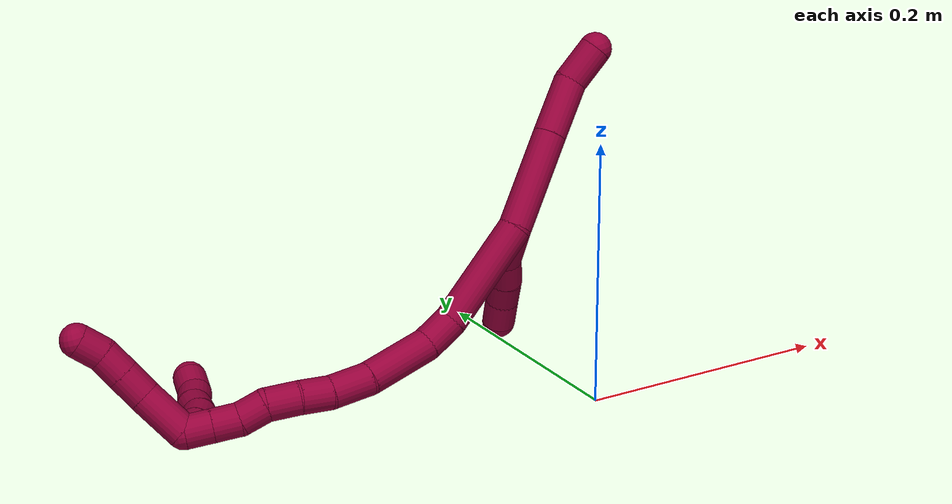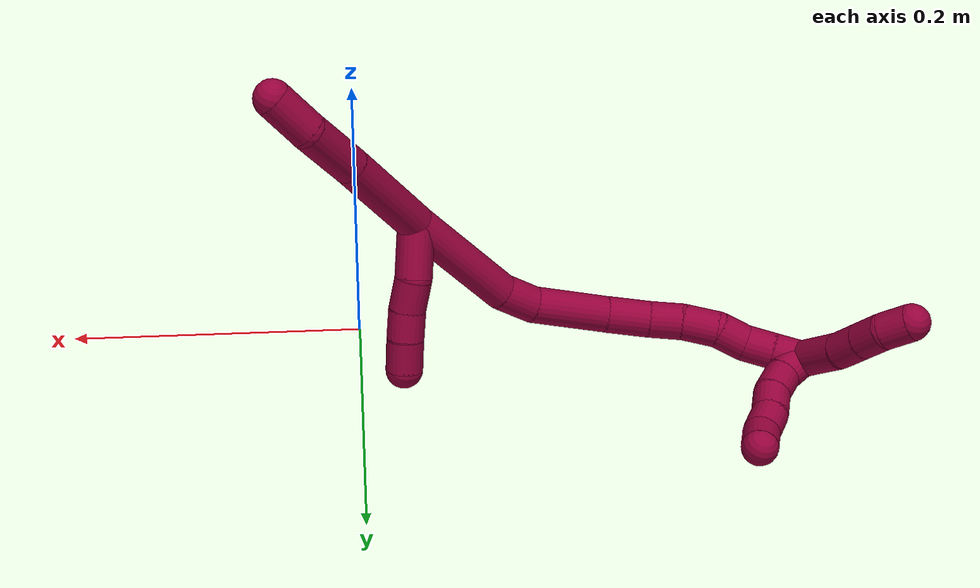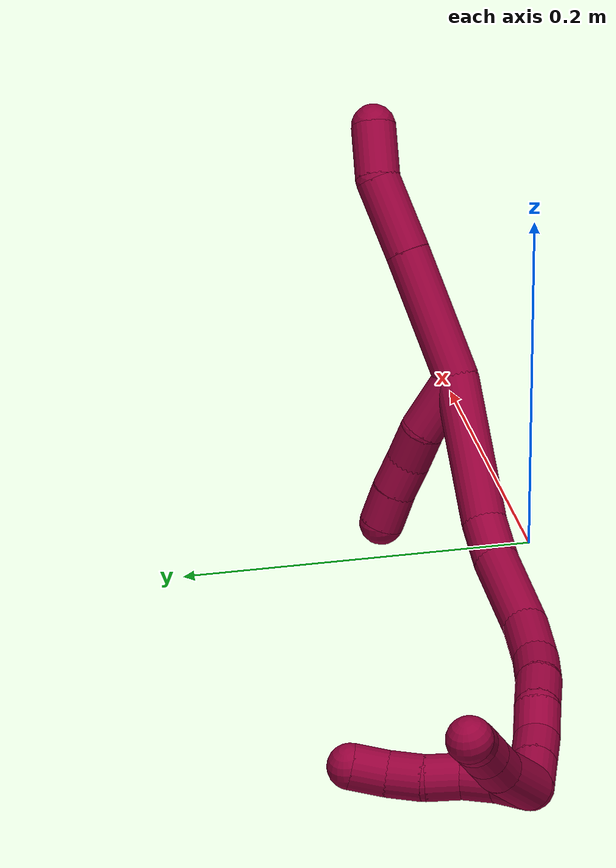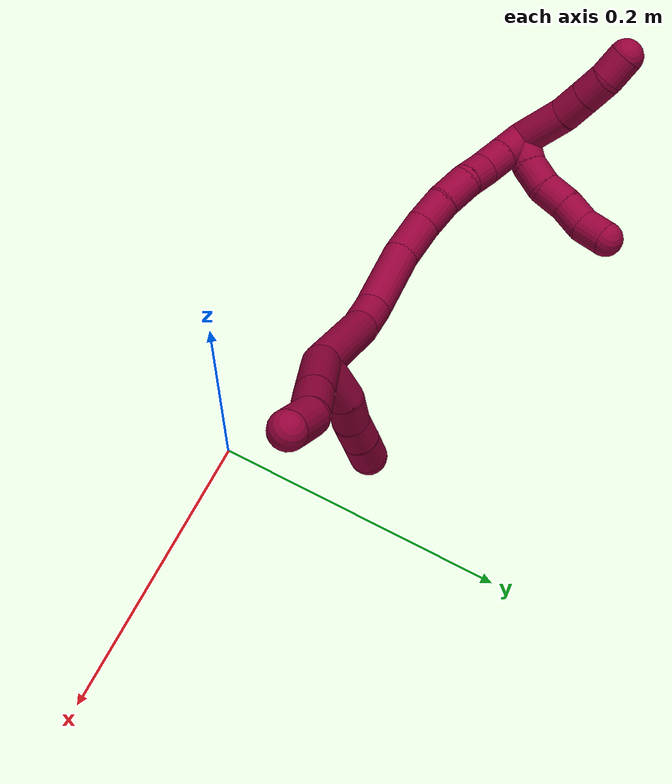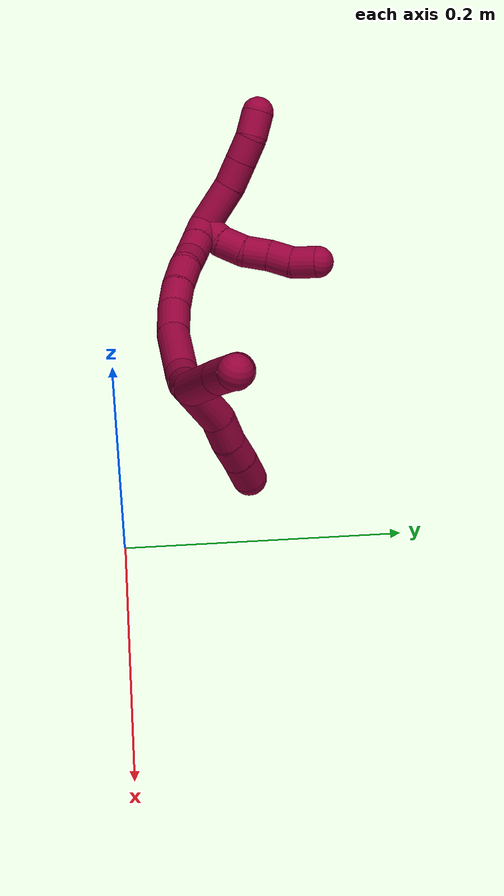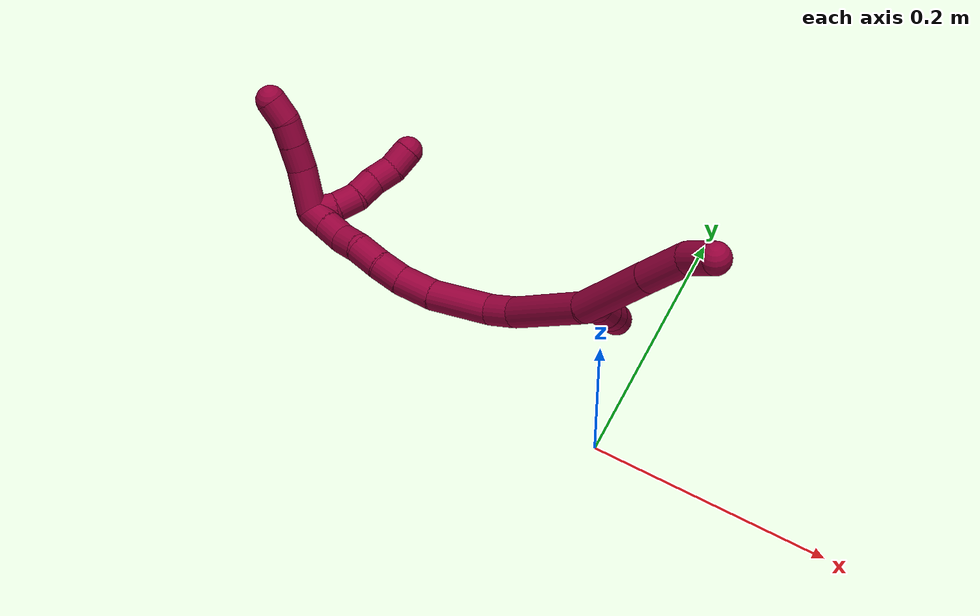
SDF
<sdf version="1.7">
 <world name="default">
  <model name="8">
   <static>0</static>
   <link name="8">
    <collision name="collision-cylinder-e_1_2_8">
     <pose>0.025029 0.007074 0.026776 -0.258289 0.734877 -0.099894</pose>
     <geometry><cylinder><radius>0.0125</radius><length>0.074658</length></cylinder></geometry>
     <surface>
      <friction><ode><mu>1.16</mu><mu2>1.16</mu2><slip1>0</slip1><slip2>0</slip2></ode></friction>
      <contact><ode><kp>1e+06</kp><kd>1</kd><max_vel>0</max_vel><min_depth>0.001</min_depth></ode></contact>
     </surface>
    </collision>
    <visual name="visual-cylinder-e_1_2_8">
     <pose>0.025029 0.007074 0.026776 -0.258289 0.734877 -0.099894</pose>
     <geometry><cylinder><radius>0.0125</radius><length>0.074658</length></cylinder></geometry>
     <material><ambient>0.584314 0 0.227451 1</ambient></material>
    </visual>
    <collision name="collision-cylinder-e_2_8_9">
     <pose>0.065113 0.01872 0.069102 -0.285939 0.74854 -0.112963</pose>
     <geometry><cylinder><radius>0.0125</radius><length>0.044243</length></cylinder></geometry>
     <surface>
      <friction><ode><mu>1.16</mu><mu2>1.16</mu2><slip1>0</slip1><slip2>0</slip2></ode></friction>
      <contact><ode><kp>1e+06</kp><kd>1</kd><max_vel>0</max_vel><min_depth>0.001</min_depth></ode></contact>
     </surface>
    </collision>
    <visual name="visual-cylinder-e_2_8_9">
     <pose>0.065113 0.01872 0.069102 -0.285939 0.74854 -0.112963</pose>
     <geometry><cylinder><radius>0.0125</radius><length>0.044243</length></cylinder></geometry>
     <material><ambient>0.584314 0 0.227451 1</ambient></material>
    </visual>
    <collision name="collision-cylinder-e_3_9_6">
     <pose>0.092815 0.021995 0.093606 0.143812 0.949808 0.074035</pose>
     <geometry><cylinder><radius>0.0125</radius><length>0.031099</length></cylinder></geometry>
     <surface>
      <friction><ode><mu>1.16</mu><mu2>1.16</mu2><slip1>0</slip1><slip2>0</slip2></ode></friction>
      <contact><ode><kp>1e+06</kp><kd>1</kd><max_vel>0</max_vel><min_depth>0.001</min_depth></ode></contact>
     </surface>
    </collision>
    <visual name="visual-cylinder-e_3_9_6">
     <pose>0.092815 0.021995 0.093606 0.143812 0.949808 0.074035</pose>
     <geometry><cylinder><radius>0.0125</radius><length>0.031099</length></cylinder></geometry>
     <material><ambient>0.584314 0 0.227451 1</ambient></material>
    </visual>
    <collision name="collision-cylinder-e_1_2_10">
     <pose>-0.003145 0.012063 -0.013169 -2.4 -0.174312 0.442146</pose>
     <geometry><cylinder><radius>0.0125</radius><length>0.036267</length></cylinder></geometry>
     <surface>
      <friction><ode><mu>1.16</mu><mu2>1.16</mu2><slip1>0</slip1><slip2>0</slip2></ode></friction>
      <contact><ode><kp>1e+06</kp><kd>1</kd><max_vel>0</max_vel><min_depth>0.001</min_depth></ode></contact>
     </surface>
    </collision>
    <visual name="visual-cylinder-e_1_2_10">
     <pose>-0.003145 0.012063 -0.013169 -2.4 -0.174312 0.442146</pose>
     <geometry><cylinder><radius>0.0125</radius><length>0.036267</length></cylinder></geometry>
     <material><ambient>0.584314 0 0.227451 1</ambient></material>
    </visual>
    <collision name="collision-cylinder-e_2_10_11">
     <pose>-0.006627 0.029631 -0.035831 -2.61613 -0.030739 0.114176</pose>
     <geometry><cylinder><radius>0.0125</radius><length>0.021959</length></cylinder></geometry>
     <surface>
      <friction><ode><mu>1.16</mu><mu2>1.16</mu2><slip1>0</slip1><slip2>0</slip2></ode></friction>
      <contact><ode><kp>1e+06</kp><kd>1</kd><max_vel>0</max_vel><min_depth>0.001</min_depth></ode></contact>
     </surface>
    </collision>
    <visual name="visual-cylinder-e_2_10_11">
     <pose>-0.006627 0.029631 -0.035831 -2.61613 -0.030739 0.114176</pose>
     <geometry><cylinder><radius>0.0125</radius><length>0.021959</length></cylinder></geometry>
     <material><ambient>0.584314 0 0.227451 1</ambient></material>
    </visual>
    <collision name="collision-cylinder-e_3_11_12">
     <pose>-0.008557 0.040738 -0.053494 -2.54044 -0.159356 0.504237</pose>
     <geometry><cylinder><radius>0.0125</radius><length>0.020065</length></cylinder></geometry>
     <surface>
      <friction><ode><mu>1.16</mu><mu2>1.16</mu2><slip1>0</slip1><slip2>0</slip2></ode></friction>
      <contact><ode><kp>1e+06</kp><kd>1</kd><max_vel>0</max_vel><min_depth>0.001</min_depth></ode></contact>
     </surface>
    </collision>
    <visual name="visual-cylinder-e_3_11_12">
     <pose>-0.008557 0.040738 -0.053494 -2.54044 -0.159356 0.504237</pose>
     <geometry><cylinder><radius>0.0125</radius><length>0.020065</length></cylinder></geometry>
     <material><ambient>0.584314 0 0.227451 1</ambient></material>
    </visual>
    <collision name="collision-cylinder-e_4_12_5">
     <pose>-0.012191 0.051697 -0.07088 -2.61518 -0.189323 0.67754</pose>
     <geometry><cylinder><radius>0.0125</radius><length>0.021709</length></cylinder></geometry>
     <surface>
      <friction><ode><mu>1.16</mu><mu2>1.16</mu2><slip1>0</slip1><slip2>0</slip2></ode></friction>
      <contact><ode><kp>1e+06</kp><kd>1</kd><max_vel>0</max_vel><min_depth>0.001</min_depth></ode></contact>
     </surface>
    </collision>
    <visual name="visual-cylinder-e_4_12_5">
     <pose>-0.012191 0.051697 -0.07088 -2.61518 -0.189323 0.67754</pose>
     <geometry><cylinder><radius>0.0125</radius><length>0.021709</length></cylinder></geometry>
     <material><ambient>0.584314 0 0.227451 1</ambient></material>
    </visual>
    <collision name="collision-cylinder-e_1_2_13">
     <pose>-0.033774 -0.000775 -0.024431 3.10989 -0.944331 -3.07954</pose>
     <geometry><cylinder><radius>0.0125</radius><length>0.083382</length></cylinder></geometry>
     <surface>
      <friction><ode><mu>1.16</mu><mu2>1.16</mu2><slip1>0</slip1><slip2>0</slip2></ode></friction>
      <contact><ode><kp>1e+06</kp><kd>1</kd><max_vel>0</max_vel><min_depth>0.001</min_depth></ode></contact>
     </surface>
    </collision>
    <visual name="visual-cylinder-e_1_2_13">
     <pose>-0.033774 -0.000775 -0.024431 3.10989 -0.944331 -3.07954</pose>
     <geometry><cylinder><radius>0.0125</radius><length>0.083382</length></cylinder></geometry>
     <material><ambient>0.584314 0 0.227451 1</ambient></material>
    </visual>
    <collision name="collision-cylinder-e_2_13_14">
     <pose>-0.079268 -0.003082 -0.053541 2.82509 -1.17298 -2.67019</pose>
     <geometry><cylinder><radius>0.0125</radius><length>0.025425</length></cylinder></geometry>
     <surface>
      <friction><ode><mu>1.16</mu><mu2>1.16</mu2><slip1>0</slip1><slip2>0</slip2></ode></friction>
      <contact><ode><kp>1e+06</kp><kd>1</kd><max_vel>0</max_vel><min_depth>0.001</min_depth></ode></contact>
     </surface>
    </collision>
    <visual name="visual-cylinder-e_2_13_14">
     <pose>-0.079268 -0.003082 -0.053541 2.82509 -1.17298 -2.67019</pose>
     <geometry><cylinder><radius>0.0125</radius><length>0.025425</length></cylinder></geometry>
     <material><ambient>0.584314 0 0.227451 1</ambient></material>
    </visual>
    <collision name="collision-cylinder-e_3_14_15">
     <pose>-0.116579 -0.00988 -0.060913 2.0434 -1.34374 -1.83005</pose>
     <geometry><cylinder><radius>0.0125</radius><length>0.052531</length></cylinder></geometry>
     <surface>
      <friction><ode><mu>1.16</mu><mu2>1.16</mu2><slip1>0</slip1><slip2>0</slip2></ode></friction>
      <contact><ode><kp>1e+06</kp><kd>1</kd><max_vel>0</max_vel><min_depth>0.001</min_depth></ode></contact>
     </surface>
    </collision>
    <visual name="visual-cylinder-e_3_14_15">
     <pose>-0.116579 -0.00988 -0.060913 2.0434 -1.34374 -1.83005</pose>
     <geometry><cylinder><radius>0.0125</radius><length>0.052531</length></cylinder></geometry>
     <material><ambient>0.584314 0 0.227451 1</ambient></material>
    </visual>
    <collision name="collision-cylinder-e_4_15_16">
     <pose>-0.157374 -0.016571 -0.062889 1.10579 -1.46618 -1.0144</pose>
     <geometry><cylinder><radius>0.0125</radius><length>0.030573</length></cylinder></geometry>
     <surface>
      <friction><ode><mu>1.16</mu><mu2>1.16</mu2><slip1>0</slip1><slip2>0</slip2></ode></friction>
      <contact><ode><kp>1e+06</kp><kd>1</kd><max_vel>0</max_vel><min_depth>0.001</min_depth></ode></contact>
     </surface>
    </collision>
    <visual name="visual-cylinder-e_4_15_16">
     <pose>-0.157374 -0.016571 -0.062889 1.10579 -1.46618 -1.0144</pose>
     <geometry><cylinder><radius>0.0125</radius><length>0.030573</length></cylinder></geometry>
     <material><ambient>0.584314 0 0.227451 1</ambient></material>
    </visual>
    <collision name="collision-cylinder-e_5_16_17">
     <pose>-0.183822 -0.018072 -0.059794 0.031143 -1.36224 -0.025243</pose>
     <geometry><cylinder><radius>0.0125</radius><length>0.022989</length></cylinder></geometry>
     <surface>
      <friction><ode><mu>1.16</mu><mu2>1.16</mu2><slip1>0</slip1><slip2>0</slip2></ode></friction>
      <contact><ode><kp>1e+06</kp><kd>1</kd><max_vel>0</max_vel><min_depth>0.001</min_depth></ode></contact>
     </surface>
    </collision>
    <visual name="visual-cylinder-e_5_16_17">
     <pose>-0.183822 -0.018072 -0.059794 0.031143 -1.36224 -0.025243</pose>
     <geometry><cylinder><radius>0.0125</radius><length>0.022989</length></cylinder></geometry>
     <material><ambient>0.584314 0 0.227451 1</ambient></material>
    </visual>
    <collision name="collision-cylinder-e_6_17_18">
     <pose>-0.207039 -0.016827 -0.05589 -0.713021 -1.40382 0.610152</pose>
     <geometry><cylinder><radius>0.0125</radius><length>0.02428</length></cylinder></geometry>
     <surface>
      <friction><ode><mu>1.16</mu><mu2>1.16</mu2><slip1>0</slip1><slip2>0</slip2></ode></friction>
      <contact><ode><kp>1e+06</kp><kd>1</kd><max_vel>0</max_vel><min_depth>0.001</min_depth></ode></contact>
     </surface>
    </collision>
    <visual name="visual-cylinder-e_6_17_18">
     <pose>-0.207039 -0.016827 -0.05589 -0.713021 -1.40382 0.610152</pose>
     <geometry><cylinder><radius>0.0125</radius><length>0.02428</length></cylinder></geometry>
     <material><ambient>0.584314 0 0.227451 1</ambient></material>
    </visual>
    <collision name="collision-cylinder-e_7_18_19">
     <pose>-0.228972 -0.014015 -0.056394 -2.50797 -1.32305 2.34445</pose>
     <geometry><cylinder><radius>0.0125</radius><length>0.020551</length></cylinder></geometry>
     <surface>
      <friction><ode><mu>1.16</mu><mu2>1.16</mu2><slip1>0</slip1><slip2>0</slip2></ode></friction>
      <contact><ode><kp>1e+06</kp><kd>1</kd><max_vel>0</max_vel><min_depth>0.001</min_depth></ode></contact>
     </surface>
    </collision>
    <visual name="visual-cylinder-e_7_18_19">
     <pose>-0.228972 -0.014015 -0.056394 -2.50797 -1.32305 2.34445</pose>
     <geometry><cylinder><radius>0.0125</radius><length>0.020551</length></cylinder></geometry>
     <material><ambient>0.584314 0 0.227451 1</ambient></material>
    </visual>
    <collision name="collision-cylinder-e_8_19_20">
     <pose>-0.248844 -0.010881 -0.057522 -1.06787 -1.38396 0.911107</pose>
     <geometry><cylinder><radius>0.0125</radius><length>0.020173</length></cylinder></geometry>
     <surface>
      <friction><ode><mu>1.16</mu><mu2>1.16</mu2><slip1>0</slip1><slip2>0</slip2></ode></friction>
      <contact><ode><kp>1e+06</kp><kd>1</kd><max_vel>0</max_vel><min_depth>0.001</min_depth></ode></contact>
     </surface>
    </collision>
    <visual name="visual-cylinder-e_8_19_20">
     <pose>-0.248844 -0.010881 -0.057522 -1.06787 -1.38396 0.911107</pose>
     <geometry><cylinder><radius>0.0125</radius><length>0.020173</length></cylinder></geometry>
     <material><ambient>0.584314 0 0.227451 1</ambient></material>
    </visual>
    <collision name="collision-cylinder-e_9_20_1">
     <pose>-0.268631 -0.007651 -0.05567 -1.03267 -1.38552 0.880668</pose>
     <geometry><cylinder><radius>0.0125</radius><length>0.020096</length></cylinder></geometry>
     <surface>
      <friction><ode><mu>1.16</mu><mu2>1.16</mu2><slip1>0</slip1><slip2>0</slip2></ode></friction>
      <contact><ode><kp>1e+06</kp><kd>1</kd><max_vel>0</max_vel><min_depth>0.001</min_depth></ode></contact>
     </surface>
    </collision>
    <visual name="visual-cylinder-e_9_20_1">
     <pose>-0.268631 -0.007651 -0.05567 -1.03267 -1.38552 0.880668</pose>
     <geometry><cylinder><radius>0.0125</radius><length>0.020096</length></cylinder></geometry>
     <material><ambient>0.584314 0 0.227451 1</ambient></material>
    </visual>
    <collision name="collision-cylinder-e_1_1_21">
     <pose>-0.28677 0.000554 -0.039206 -0.403018 -0.455551 0.094634</pose>
     <geometry><cylinder><radius>0.0125</radius><length>0.037564</length></cylinder></geometry>
     <surface>
      <friction><ode><mu>1.16</mu><mu2>1.16</mu2><slip1>0</slip1><slip2>0</slip2></ode></friction>
      <contact><ode><kp>1e+06</kp><kd>1</kd><max_vel>0</max_vel><min_depth>0.001</min_depth></ode></contact>
     </surface>
    </collision>
    <visual name="visual-cylinder-e_1_1_21">
     <pose>-0.28677 0.000554 -0.039206 -0.403018 -0.455551 0.094634</pose>
     <geometry><cylinder><radius>0.0125</radius><length>0.037564</length></cylinder></geometry>
     <material><ambient>0.584314 0 0.227451 1</ambient></material>
    </visual>
    <collision name="collision-cylinder-e_2_21_22">
     <pose>-0.299635 0.0094 -0.014002 -0.226319 -0.433457 0.050036</pose>
     <geometry><cylinder><radius>0.0125</radius><length>0.02191</length></cylinder></geometry>
     <surface>
      <friction><ode><mu>1.16</mu><mu2>1.16</mu2><slip1>0</slip1><slip2>0</slip2></ode></friction>
      <contact><ode><kp>1e+06</kp><kd>1</kd><max_vel>0</max_vel><min_depth>0.001</min_depth></ode></contact>
     </surface>
    </collision>
    <visual name="visual-cylinder-e_2_21_22">
     <pose>-0.299635 0.0094 -0.014002 -0.226319 -0.433457 0.050036</pose>
     <geometry><cylinder><radius>0.0125</radius><length>0.02191</length></cylinder></geometry>
     <material><ambient>0.584314 0 0.227451 1</ambient></material>
    </visual>
    <collision name="collision-cylinder-e_3_22_23">
     <pose>-0.308533 0.013606 0.004525 -0.219819 -0.442956 0.049687</pose>
     <geometry><cylinder><radius>0.0125</radius><length>0.020049</length></cylinder></geometry>
     <surface>
      <friction><ode><mu>1.16</mu><mu2>1.16</mu2><slip1>0</slip1><slip2>0</slip2></ode></friction>
      <contact><ode><kp>1e+06</kp><kd>1</kd><max_vel>0</max_vel><min_depth>0.001</min_depth></ode></contact>
     </surface>
    </collision>
    <visual name="visual-cylinder-e_3_22_23">
     <pose>-0.308533 0.013606 0.004525 -0.219819 -0.442956 0.049687</pose>
     <geometry><cylinder><radius>0.0125</radius><length>0.020049</length></cylinder></geometry>
     <material><ambient>0.584314 0 0.227451 1</ambient></material>
    </visual>
    <collision name="collision-cylinder-e_4_23_4">
     <pose>-0.319623 0.016132 0.021004 -0.072065 -0.725635 0.027368</pose>
     <geometry><cylinder><radius>0.0125</radius><length>0.020477</length></cylinder></geometry>
     <surface>
      <friction><ode><mu>1.16</mu><mu2>1.16</mu2><slip1>0</slip1><slip2>0</slip2></ode></friction>
      <contact><ode><kp>1e+06</kp><kd>1</kd><max_vel>0</max_vel><min_depth>0.001</min_depth></ode></contact>
     </surface>
    </collision>
    <visual name="visual-cylinder-e_4_23_4">
     <pose>-0.319623 0.016132 0.021004 -0.072065 -0.725635 0.027368</pose>
     <geometry><cylinder><radius>0.0125</radius><length>0.020477</length></cylinder></geometry>
     <material><ambient>0.584314 0 0.227451 1</ambient></material>
    </visual>
    <collision name="collision-cylinder-e_1_1_24">
     <pose>-0.272418 0.001798 -0.055795 -1.70664 0.654672 -0.742182</pose>
     <geometry><cylinder><radius>0.0125</radius><length>0.02</length></cylinder></geometry>
     <surface>
      <friction><ode><mu>1.16</mu><mu2>1.16</mu2><slip1>0</slip1><slip2>0</slip2></ode></friction>
      <contact><ode><kp>1e+06</kp><kd>1</kd><max_vel>0</max_vel><min_depth>0.001</min_depth></ode></contact>
     </surface>
    </collision>
    <visual name="visual-cylinder-e_1_1_24">
     <pose>-0.272418 0.001798 -0.055795 -1.70664 0.654672 -0.742182</pose>
     <geometry><cylinder><radius>0.0125</radius><length>0.02</length></cylinder></geometry>
     <material><ambient>0.584314 0 0.227451 1</ambient></material>
    </visual>
    <collision name="collision-cylinder-e_2_24_25">
     <pose>-0.262692 0.01897 -0.056618 -1.54377 0.37219 -0.362483</pose>
     <geometry><cylinder><radius>0.0125</radius><length>0.02</length></cylinder></geometry>
     <surface>
      <friction><ode><mu>1.16</mu><mu2>1.16</mu2><slip1>0</slip1><slip2>0</slip2></ode></friction>
      <contact><ode><kp>1e+06</kp><kd>1</kd><max_vel>0</max_vel><min_depth>0.001</min_depth></ode></contact>
     </surface>
    </collision>
    <visual name="visual-cylinder-e_2_24_25">
     <pose>-0.262692 0.01897 -0.056618 -1.54377 0.37219 -0.362483</pose>
     <geometry><cylinder><radius>0.0125</radius><length>0.02</length></cylinder></geometry>
     <material><ambient>0.584314 0 0.227451 1</ambient></material>
    </visual>
    <collision name="collision-cylinder-e_3_25_26">
     <pose>-0.258338 0.038204 -0.055347 -1.46847 0.071878 -0.064881</pose>
     <geometry><cylinder><radius>0.0125</radius><length>0.02</length></cylinder></geometry>
     <surface>
      <friction><ode><mu>1.16</mu><mu2>1.16</mu2><slip1>0</slip1><slip2>0</slip2></ode></friction>
      <contact><ode><kp>1e+06</kp><kd>1</kd><max_vel>0</max_vel><min_depth>0.001</min_depth></ode></contact>
     </surface>
    </collision>
    <visual name="visual-cylinder-e_3_25_26">
     <pose>-0.258338 0.038204 -0.055347 -1.46847 0.071878 -0.064881</pose>
     <geometry><cylinder><radius>0.0125</radius><length>0.02</length></cylinder></geometry>
     <material><ambient>0.584314 0 0.227451 1</ambient></material>
    </visual>
    <collision name="collision-cylinder-e_4_26_27">
     <pose>-0.254625 0.0576 -0.053207 -1.45295 0.304154 -0.270706</pose>
     <geometry><cylinder><radius>0.0125</radius><length>0.02</length></cylinder></geometry>
     <surface>
      <friction><ode><mu>1.16</mu><mu2>1.16</mu2><slip1>0</slip1><slip2>0</slip2></ode></friction>
      <contact><ode><kp>1e+06</kp><kd>1</kd><max_vel>0</max_vel><min_depth>0.001</min_depth></ode></contact>
     </surface>
    </collision>
    <visual name="visual-cylinder-e_4_26_27">
     <pose>-0.254625 0.0576 -0.053207 -1.45295 0.304154 -0.270706</pose>
     <geometry><cylinder><radius>0.0125</radius><length>0.02</length></cylinder></geometry>
     <material><ambient>0.584314 0 0.227451 1</ambient></material>
    </visual>
    <collision name="collision-cylinder-e_5_27_3">
     <pose>-0.250258 0.076278 -0.04842 -1.19184 0.13759 -0.093388</pose>
     <geometry><cylinder><radius>0.0125</radius><length>0.02</length></cylinder></geometry>
     <surface>
      <friction><ode><mu>1.16</mu><mu2>1.16</mu2><slip1>0</slip1><slip2>0</slip2></ode></friction>
      <contact><ode><kp>1e+06</kp><kd>1</kd><max_vel>0</max_vel><min_depth>0.001</min_depth></ode></contact>
     </surface>
    </collision>
    <visual name="visual-cylinder-e_5_27_3">
     <pose>-0.250258 0.076278 -0.04842 -1.19184 0.13759 -0.093388</pose>
     <geometry><cylinder><radius>0.0125</radius><length>0.02</length></cylinder></geometry>
     <material><ambient>0.584314 0 0.227451 1</ambient></material>
    </visual>
    <collision name="collision-sphere-3">
     <pose>-0.248887 0.085481 -0.044756 0 -0 0</pose>
     <geometry><sphere><radius>0.0125</radius></sphere></geometry>
     <surface>
      <friction><ode><mu>1.16</mu><mu2>1.16</mu2><slip1>0</slip1><slip2>0</slip2></ode></friction>
      <contact><ode><kp>1e+06</kp><kd>1</kd><max_vel>0</max_vel><min_depth>0.001</min_depth></ode></contact>
     </surface>
    </collision>
    <visual name="visual-sphere-3">
     <pose>-0.248887 0.085481 -0.044756 0 -0 0</pose>
     <geometry><sphere><radius>0.0125</radius></sphere></geometry>
     <material><ambient>0.584314 0 0.227451 1</ambient></material>
    </visual>
    <collision name="collision-sphere-27">
     <pose>-0.25163 0.067075 -0.052085 0 -0 0</pose>
     <geometry><sphere><radius>0.0125</radius></sphere></geometry>
     <surface>
      <friction><ode><mu>1.16</mu><mu2>1.16</mu2><slip1>0</slip1><slip2>0</slip2></ode></friction>
      <contact><ode><kp>1e+06</kp><kd>1</kd><max_vel>0</max_vel><min_depth>0.001</min_depth></ode></contact>
     </surface>
    </collision>
    <visual name="visual-sphere-27">
     <pose>-0.25163 0.067075 -0.052085 0 -0 0</pose>
     <geometry><sphere><radius>0.0125</radius></sphere></geometry>
     <material><ambient>0.584314 0 0.227451 1</ambient></material>
    </visual>
    <collision name="collision-sphere-26">
     <pose>-0.257619 0.048126 -0.054328 0 -0 0</pose>
     <geometry><sphere><radius>0.0125</radius></sphere></geometry>
     <surface>
      <friction><ode><mu>1.16</mu><mu2>1.16</mu2><slip1>0</slip1><slip2>0</slip2></ode></friction>
      <contact><ode><kp>1e+06</kp><kd>1</kd><max_vel>0</max_vel><min_depth>0.001</min_depth></ode></contact>
     </surface>
    </collision>
    <visual name="visual-sphere-26">
     <pose>-0.257619 0.048126 -0.054328 0 -0 0</pose>
     <geometry><sphere><radius>0.0125</radius></sphere></geometry>
     <material><ambient>0.584314 0 0.227451 1</ambient></material>
    </visual>
    <collision name="collision-sphere-25">
     <pose>-0.259056 0.028282 -0.056366 0 -0 0</pose>
     <geometry><sphere><radius>0.0125</radius></sphere></geometry>
     <surface>
      <friction><ode><mu>1.16</mu><mu2>1.16</mu2><slip1>0</slip1><slip2>0</slip2></ode></friction>
      <contact><ode><kp>1e+06</kp><kd>1</kd><max_vel>0</max_vel><min_depth>0.001</min_depth></ode></contact>
     </surface>
    </collision>
    <visual name="visual-sphere-25">
     <pose>-0.259056 0.028282 -0.056366 0 -0 0</pose>
     <geometry><sphere><radius>0.0125</radius></sphere></geometry>
     <material><ambient>0.584314 0 0.227451 1</ambient></material>
    </visual>
    <collision name="collision-sphere-24">
     <pose>-0.266329 0.009658 -0.05687 0 -0 0</pose>
     <geometry><sphere><radius>0.0125</radius></sphere></geometry>
     <surface>
      <friction><ode><mu>1.16</mu><mu2>1.16</mu2><slip1>0</slip1><slip2>0</slip2></ode></friction>
      <contact><ode><kp>1e+06</kp><kd>1</kd><max_vel>0</max_vel><min_depth>0.001</min_depth></ode></contact>
     </surface>
    </collision>
    <visual name="visual-sphere-24">
     <pose>-0.266329 0.009658 -0.05687 0 -0 0</pose>
     <geometry><sphere><radius>0.0125</radius></sphere></geometry>
     <material><ambient>0.584314 0 0.227451 1</ambient></material>
    </visual>
    <collision name="collision-sphere-4">
     <pose>-0.326418 0.016683 0.028643 0 -0 0</pose>
     <geometry><sphere><radius>0.0125</radius></sphere></geometry>
     <surface>
      <friction><ode><mu>1.16</mu><mu2>1.16</mu2><slip1>0</slip1><slip2>0</slip2></ode></friction>
      <contact><ode><kp>1e+06</kp><kd>1</kd><max_vel>0</max_vel><min_depth>0.001</min_depth></ode></contact>
     </surface>
    </collision>
    <visual name="visual-sphere-4">
     <pose>-0.326418 0.016683 0.028643 0 -0 0</pose>
     <geometry><sphere><radius>0.0125</radius></sphere></geometry>
     <material><ambient>0.584314 0 0.227451 1</ambient></material>
    </visual>
    <collision name="collision-sphere-23">
     <pose>-0.312829 0.01558 0.013364 0 -0 0</pose>
     <geometry><sphere><radius>0.0125</radius></sphere></geometry>
     <surface>
      <friction><ode><mu>1.16</mu><mu2>1.16</mu2><slip1>0</slip1><slip2>0</slip2></ode></friction>
      <contact><ode><kp>1e+06</kp><kd>1</kd><max_vel>0</max_vel><min_depth>0.001</min_depth></ode></contact>
     </surface>
    </collision>
    <visual name="visual-sphere-23">
     <pose>-0.312829 0.01558 0.013364 0 -0 0</pose>
     <geometry><sphere><radius>0.0125</radius></sphere></geometry>
     <material><ambient>0.584314 0 0.227451 1</ambient></material>
    </visual>
    <collision name="collision-sphere-22">
     <pose>-0.304236 0.011631 -0.004314 0 -0 0</pose>
     <geometry><sphere><radius>0.0125</radius></sphere></geometry>
     <surface>
      <friction><ode><mu>1.16</mu><mu2>1.16</mu2><slip1>0</slip1><slip2>0</slip2></ode></friction>
      <contact><ode><kp>1e+06</kp><kd>1</kd><max_vel>0</max_vel><min_depth>0.001</min_depth></ode></contact>
     </surface>
    </collision>
    <visual name="visual-sphere-22">
     <pose>-0.304236 0.011631 -0.004314 0 -0 0</pose>
     <geometry><sphere><radius>0.0125</radius></sphere></geometry>
     <material><ambient>0.584314 0 0.227451 1</ambient></material>
    </visual>
    <collision name="collision-sphere-21">
     <pose>-0.295033 0.007169 -0.023691 0 -0 0</pose>
     <geometry><sphere><radius>0.0125</radius></sphere></geometry>
     <surface>
      <friction><ode><mu>1.16</mu><mu2>1.16</mu2><slip1>0</slip1><slip2>0</slip2></ode></friction>
      <contact><ode><kp>1e+06</kp><kd>1</kd><max_vel>0</max_vel><min_depth>0.001</min_depth></ode></contact>
     </surface>
    </collision>
    <visual name="visual-sphere-21">
     <pose>-0.295033 0.007169 -0.023691 0 -0 0</pose>
     <geometry><sphere><radius>0.0125</radius></sphere></geometry>
     <material><ambient>0.584314 0 0.227451 1</ambient></material>
    </visual>
    <collision name="collision-sphere-1">
     <pose>-0.278507 -0.006061 -0.054721 0 -0 0</pose>
     <geometry><sphere><radius>0.0125</radius></sphere></geometry>
     <surface>
      <friction><ode><mu>1.16</mu><mu2>1.16</mu2><slip1>0</slip1><slip2>0</slip2></ode></friction>
      <contact><ode><kp>1e+06</kp><kd>1</kd><max_vel>0</max_vel><min_depth>0.001</min_depth></ode></contact>
     </surface>
    </collision>
    <visual name="visual-sphere-1">
     <pose>-0.278507 -0.006061 -0.054721 0 -0 0</pose>
     <geometry><sphere><radius>0.0125</radius></sphere></geometry>
     <material><ambient>0.584314 0 0.227451 1</ambient></material>
    </visual>
    <collision name="collision-sphere-11">
     <pose>-0.006965 0.035136 -0.045325 0 -0 0</pose>
     <geometry><sphere><radius>0.0125</radius></sphere></geometry>
     <surface>
      <friction><ode><mu>1.16</mu><mu2>1.16</mu2><slip1>0</slip1><slip2>0</slip2></ode></friction>
      <contact><ode><kp>1e+06</kp><kd>1</kd><max_vel>0</max_vel><min_depth>0.001</min_depth></ode></contact>
     </surface>
    </collision>
    <visual name="visual-sphere-11">
     <pose>-0.006965 0.035136 -0.045325 0 -0 0</pose>
     <geometry><sphere><radius>0.0125</radius></sphere></geometry>
     <material><ambient>0.584314 0 0.227451 1</ambient></material>
    </visual>
    <collision name="collision-sphere-10">
     <pose>-0.00629 0.024126 -0.026338 0 -0 0</pose>
     <geometry><sphere><radius>0.0125</radius></sphere></geometry>
     <surface>
      <friction><ode><mu>1.16</mu><mu2>1.16</mu2><slip1>0</slip1><slip2>0</slip2></ode></friction>
      <contact><ode><kp>1e+06</kp><kd>1</kd><max_vel>0</max_vel><min_depth>0.001</min_depth></ode></contact>
     </surface>
    </collision>
    <visual name="visual-sphere-10">
     <pose>-0.00629 0.024126 -0.026338 0 -0 0</pose>
     <geometry><sphere><radius>0.0125</radius></sphere></geometry>
     <material><ambient>0.584314 0 0.227451 1</ambient></material>
    </visual>
    <collision name="collision-sphere-6">
     <pose>0.105461 0.020698 0.10256 0 -0 0</pose>
     <geometry><sphere><radius>0.0125</radius></sphere></geometry>
     <surface>
      <friction><ode><mu>1.16</mu><mu2>1.16</mu2><slip1>0</slip1><slip2>0</slip2></ode></friction>
      <contact><ode><kp>1e+06</kp><kd>1</kd><max_vel>0</max_vel><min_depth>0.001</min_depth></ode></contact>
     </surface>
    </collision>
    <visual name="visual-sphere-6">
     <pose>0.105461 0.020698 0.10256 0 -0 0</pose>
     <geometry><sphere><radius>0.0125</radius></sphere></geometry>
     <material><ambient>0.584314 0 0.227451 1</ambient></material>
    </visual>
    <collision name="collision-sphere-9">
     <pose>0.080168 0.023291 0.084652 0 -0 0</pose>
     <geometry><sphere><radius>0.0125</radius></sphere></geometry>
     <surface>
      <friction><ode><mu>1.16</mu><mu2>1.16</mu2><slip1>0</slip1><slip2>0</slip2></ode></friction>
      <contact><ode><kp>1e+06</kp><kd>1</kd><max_vel>0</max_vel><min_depth>0.001</min_depth></ode></contact>
     </surface>
    </collision>
    <visual name="visual-sphere-9">
     <pose>0.080168 0.023291 0.084652 0 -0 0</pose>
     <geometry><sphere><radius>0.0125</radius></sphere></geometry>
     <material><ambient>0.584314 0 0.227451 1</ambient></material>
    </visual>
    <collision name="collision-sphere-2">
     <geometry><sphere><radius>0.0125</radius></sphere></geometry>
     <surface>
      <friction><ode><mu>1.16</mu><mu2>1.16</mu2><slip1>0</slip1><slip2>0</slip2></ode></friction>
      <contact><ode><kp>1e+06</kp><kd>1</kd><max_vel>0</max_vel><min_depth>0.001</min_depth></ode></contact>
     </surface>
    </collision>
    <visual name="visual-sphere-2">
     <geometry><sphere><radius>0.0125</radius></sphere></geometry>
     <material><ambient>0.584314 0 0.227451 1</ambient></material>
    </visual>
    <collision name="collision-sphere-19">
     <pose>-0.238934 -0.012523 -0.058425 0 -0 0</pose>
     <geometry><sphere><radius>0.0125</radius></sphere></geometry>
     <surface>
      <friction><ode><mu>1.16</mu><mu2>1.16</mu2><slip1>0</slip1><slip2>0</slip2></ode></friction>
      <contact><ode><kp>1e+06</kp><kd>1</kd><max_vel>0</max_vel><min_depth>0.001</min_depth></ode></contact>
     </surface>
    </collision>
    <visual name="visual-sphere-19">
     <pose>-0.238934 -0.012523 -0.058425 0 -0 0</pose>
     <geometry><sphere><radius>0.0125</radius></sphere></geometry>
     <material><ambient>0.584314 0 0.227451 1</ambient></material>
    </visual>
    <collision name="collision-sphere-8">
     <pose>0.050058 0.014148 0.053552 0 -0 0</pose>
     <geometry><sphere><radius>0.0125</radius></sphere></geometry>
     <surface>
      <friction><ode><mu>1.16</mu><mu2>1.16</mu2><slip1>0</slip1><slip2>0</slip2></ode></friction>
      <contact><ode><kp>1e+06</kp><kd>1</kd><max_vel>0</max_vel><min_depth>0.001</min_depth></ode></contact>
     </surface>
    </collision>
    <visual name="visual-sphere-8">
     <pose>0.050058 0.014148 0.053552 0 -0 0</pose>
     <geometry><sphere><radius>0.0125</radius></sphere></geometry>
     <material><ambient>0.584314 0 0.227451 1</ambient></material>
    </visual>
    <collision name="collision-sphere-12">
     <pose>-0.010149 0.04634 -0.061663 0 -0 0</pose>
     <geometry><sphere><radius>0.0125</radius></sphere></geometry>
     <surface>
      <friction><ode><mu>1.16</mu><mu2>1.16</mu2><slip1>0</slip1><slip2>0</slip2></ode></friction>
      <contact><ode><kp>1e+06</kp><kd>1</kd><max_vel>0</max_vel><min_depth>0.001</min_depth></ode></contact>
     </surface>
    </collision>
    <visual name="visual-sphere-12">
     <pose>-0.010149 0.04634 -0.061663 0 -0 0</pose>
     <geometry><sphere><radius>0.0125</radius></sphere></geometry>
     <material><ambient>0.584314 0 0.227451 1</ambient></material>
    </visual>
    <collision name="collision-sphere-5">
     <pose>-0.014234 0.057053 -0.080097 0 -0 0</pose>
     <geometry><sphere><radius>0.0125</radius></sphere></geometry>
     <surface>
      <friction><ode><mu>1.16</mu><mu2>1.16</mu2><slip1>0</slip1><slip2>0</slip2></ode></friction>
      <contact><ode><kp>1e+06</kp><kd>1</kd><max_vel>0</max_vel><min_depth>0.001</min_depth></ode></contact>
     </surface>
    </collision>
    <visual name="visual-sphere-5">
     <pose>-0.014234 0.057053 -0.080097 0 -0 0</pose>
     <geometry><sphere><radius>0.0125</radius></sphere></geometry>
     <material><ambient>0.584314 0 0.227451 1</ambient></material>
    </visual>
    <collision name="collision-sphere-13">
     <pose>-0.067548 -0.001549 -0.048861 0 -0 0</pose>
     <geometry><sphere><radius>0.0125</radius></sphere></geometry>
     <surface>
      <friction><ode><mu>1.16</mu><mu2>1.16</mu2><slip1>0</slip1><slip2>0</slip2></ode></friction>
      <contact><ode><kp>1e+06</kp><kd>1</kd><max_vel>0</max_vel><min_depth>0.001</min_depth></ode></contact>
     </surface>
    </collision>
    <visual name="visual-sphere-13">
     <pose>-0.067548 -0.001549 -0.048861 0 -0 0</pose>
     <geometry><sphere><radius>0.0125</radius></sphere></geometry>
     <material><ambient>0.584314 0 0.227451 1</ambient></material>
    </visual>
    <collision name="collision-sphere-14">
     <pose>-0.090988 -0.004615 -0.058222 0 -0 0</pose>
     <geometry><sphere><radius>0.0125</radius></sphere></geometry>
     <surface>
      <friction><ode><mu>1.16</mu><mu2>1.16</mu2><slip1>0</slip1><slip2>0</slip2></ode></friction>
      <contact><ode><kp>1e+06</kp><kd>1</kd><max_vel>0</max_vel><min_depth>0.001</min_depth></ode></contact>
     </surface>
    </collision>
    <visual name="visual-sphere-14">
     <pose>-0.090988 -0.004615 -0.058222 0 -0 0</pose>
     <geometry><sphere><radius>0.0125</radius></sphere></geometry>
     <material><ambient>0.584314 0 0.227451 1</ambient></material>
    </visual>
    <collision name="collision-sphere-15">
     <pose>-0.142171 -0.015144 -0.063605 0 -0 0</pose>
     <geometry><sphere><radius>0.0125</radius></sphere></geometry>
     <surface>
      <friction><ode><mu>1.16</mu><mu2>1.16</mu2><slip1>0</slip1><slip2>0</slip2></ode></friction>
      <contact><ode><kp>1e+06</kp><kd>1</kd><max_vel>0</max_vel><min_depth>0.001</min_depth></ode></contact>
     </surface>
    </collision>
    <visual name="visual-sphere-15">
     <pose>-0.142171 -0.015144 -0.063605 0 -0 0</pose>
     <geometry><sphere><radius>0.0125</radius></sphere></geometry>
     <material><ambient>0.584314 0 0.227451 1</ambient></material>
    </visual>
    <collision name="collision-sphere-16">
     <pose>-0.172577 -0.017998 -0.062173 0 -0 0</pose>
     <geometry><sphere><radius>0.0125</radius></sphere></geometry>
     <surface>
      <friction><ode><mu>1.16</mu><mu2>1.16</mu2><slip1>0</slip1><slip2>0</slip2></ode></friction>
      <contact><ode><kp>1e+06</kp><kd>1</kd><max_vel>0</max_vel><min_depth>0.001</min_depth></ode></contact>
     </surface>
    </collision>
    <visual name="visual-sphere-16">
     <pose>-0.172577 -0.017998 -0.062173 0 -0 0</pose>
     <geometry><sphere><radius>0.0125</radius></sphere></geometry>
     <material><ambient>0.584314 0 0.227451 1</ambient></material>
    </visual>
    <collision name="collision-sphere-17">
     <pose>-0.195068 -0.018146 -0.057416 0 -0 0</pose>
     <geometry><sphere><radius>0.0125</radius></sphere></geometry>
     <surface>
      <friction><ode><mu>1.16</mu><mu2>1.16</mu2><slip1>0</slip1><slip2>0</slip2></ode></friction>
      <contact><ode><kp>1e+06</kp><kd>1</kd><max_vel>0</max_vel><min_depth>0.001</min_depth></ode></contact>
     </surface>
    </collision>
    <visual name="visual-sphere-17">
     <pose>-0.195068 -0.018146 -0.057416 0 -0 0</pose>
     <geometry><sphere><radius>0.0125</radius></sphere></geometry>
     <material><ambient>0.584314 0 0.227451 1</ambient></material>
    </visual>
    <collision name="collision-sphere-18">
     <pose>-0.21901 -0.015507 -0.054363 0 -0 0</pose>
     <geometry><sphere><radius>0.0125</radius></sphere></geometry>
     <surface>
      <friction><ode><mu>1.16</mu><mu2>1.16</mu2><slip1>0</slip1><slip2>0</slip2></ode></friction>
      <contact><ode><kp>1e+06</kp><kd>1</kd><max_vel>0</max_vel><min_depth>0.001</min_depth></ode></contact>
     </surface>
    </collision>
    <visual name="visual-sphere-18">
     <pose>-0.21901 -0.015507 -0.054363 0 -0 0</pose>
     <geometry><sphere><radius>0.0125</radius></sphere></geometry>
     <material><ambient>0.584314 0 0.227451 1</ambient></material>
    </visual>
    <collision name="collision-sphere-20">
     <pose>-0.258755 -0.00924 -0.056618 0 -0 0</pose>
     <geometry><sphere><radius>0.0125</radius></sphere></geometry>
     <surface>
      <friction><ode><mu>1.16</mu><mu2>1.16</mu2><slip1>0</slip1><slip2>0</slip2></ode></friction>
      <contact><ode><kp>1e+06</kp><kd>1</kd><max_vel>0</max_vel><min_depth>0.001</min_depth></ode></contact>
     </surface>
    </collision>
    <visual name="visual-sphere-20">
     <pose>-0.258755 -0.00924 -0.056618 0 -0 0</pose>
     <geometry><sphere><radius>0.0125</radius></sphere></geometry>
     <material><ambient>0.584314 0 0.227451 1</ambient></material>
    </visual>
    <inertial>
     <pose>-0.118984 0.009468 -0.022995 0 -0 0</pose>
     <mass>0.75</mass>
     <inertia><ixx>9e-06</ixx><ixy>0</ixy><ixz>0</ixz><iyy>0.000143</iyy><iyz>0</iyz><izz>2.4e-05</izz></inertia>
    </inertial>
   </link>
   <pose>-0.038986 0.052603 0.127986 -0.192373 -0.21316 -0.137399</pose>
  </model>
 </world>
</sdf>
